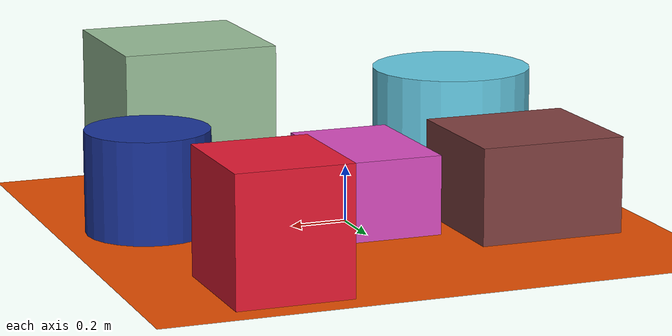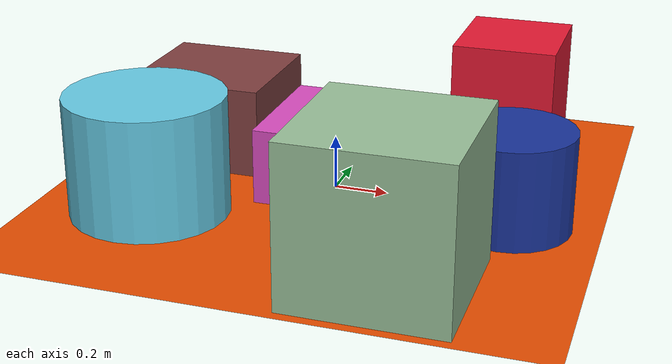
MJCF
<mujoco>
   <asset>
<texture type="skybox" builtin="gradient" rgb1="0.2 0.5 0.5" rgb2="0.8 0.8 0.4" width="256" height="256"/>
<texture name="flat_0" builtin="flat" rgb1="0.9 0.1 0.2" rgb2="0.9 0.1 0.2"  width="200" height="200"/>
<texture name="gradient_1" builtin="gradient" rgb1="0.0 0.5 0.3" rgb2="1.0 0.0 0.2" width="200" height="200"/>
<texture name="flat_2" builtin="flat" rgb1="0.1 0.2 0.6" rgb2="0.1 0.2 0.6"  width="200" height="200"/>
<texture name="flat_3" builtin="flat" rgb1="0.4 0.8 0.9" rgb2="0.4 0.8 0.9"  width="200" height="200"/>
<texture name="gradient_4" builtin="gradient" rgb1="0.6 0.7 1.0" rgb2="0.6 0.8 0.2" width="200" height="200"/>
<texture name="gradient_5" builtin="gradient" rgb1="0.7 0.0 0.6" rgb2="1.0 0.6 0.9" width="200" height="200"/><material name="flat_0_mat" reflectance="0" texture="flat_0" texuniform="true"/>
<material name="gradient_1_mat" reflectance="0" texture="gradient_1" texuniform="true"/>
<material name="flat_2_mat" reflectance="0" texture="flat_2" texuniform="true"/>
<material name="flat_3_mat" reflectance="0" texture="flat_3" texuniform="true"/>
<material name="gradient_4_mat" reflectance="0" texture="gradient_4" texuniform="true"/>
<material name="gradient_5_mat" reflectance="0" texture="gradient_5" texuniform="true"/>
   </asset>

   <worldbody>
      <light diffuse=".9 .9 .9" pos="0 0 3" dir="0 0 -1"/>
     <geom type="plane" size="1 1 0.1" rgba="0.9 0.3 0.0 1"/>
<geom type="box" pos="0.52 0.7 0.22" size="0.2 0.22 0.22" material="flat_0_mat" />
<geom type="box" pos="-0.57 0.24 0.17" size="0.26 0.25 0.17" material="gradient_1_mat" />
<geom type="cylinder" pos="0.68 -0.13 0.18" size="0.22 0.18 0.18" material="flat_2_mat" />
<geom type="cylinder" pos="-0.57 -0.4 0.22" size="0.29 0.22 0.22" material="flat_3_mat" />
<geom type="box" pos="0.39 -0.69 0.28" size="0.28 0.28 0.28" material="gradient_4_mat" />
<geom type="box" pos="-0.06 0.03 0.14" size="0.18 0.26 0.14" material="gradient_5_mat" /><camera euler="60 0 180" fovy="60" name="camera_a" pos="0 -1.5 1"></camera>   </worldbody>
</mujoco>
